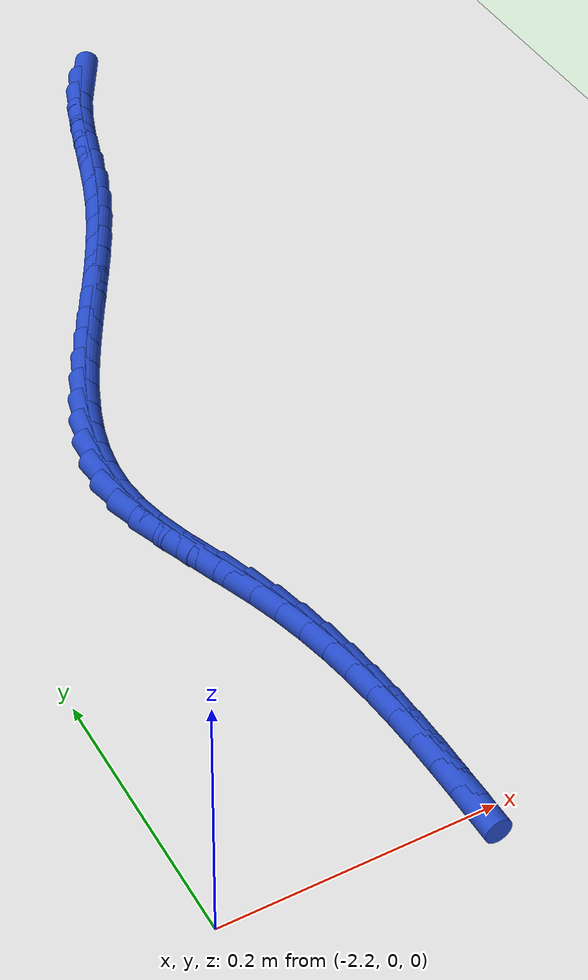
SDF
<sdf version="1.6">
 <world name="default">
  <model name="ground_plane">
   <static>1</static>
   <link name="link">
    <collision name="collision">
     <geometry><plane><normal>0 0 1</normal><size>100 100</size></plane></geometry>
     <surface><friction><ode><mu>100</mu><mu2>50</mu2></ode></friction></surface>
    </collision>
    <visual name="visual">
     <cast_shadows>0</cast_shadows>
     <geometry><plane><normal>0 0 1</normal><size>100 100</size></plane></geometry>
     <material>
      <script><uri>file://media/materials/scripts/gazebo.material</uri><name>Gazebo/WhiteGlow</name></script>
     </material>
    </visual>
   </link>
  </model>
  <model name="line">
   <link name="link_109">
    <pose>-1.890173382354377 0.8306256627773887 0.01 0 1.57 1.0460444347230606</pose>
    <collision name="collision">
     <geometry><cylinder><radius>0.01</radius><length>0.08</length></cylinder></geometry>
    </collision>
    <visual name="visual">
     <material>
      <script><name>Gazebo/Blue</name><uri>file://media/materials/scripts/gazebo.material</uri></script>
     </material>
     <geometry><cylinder><radius>0.01</radius><length>0.08</length></cylinder></geometry>
    </visual>
   </link>
   <link name="link_110">
    <pose>-1.901343467620338 0.8113299265351325 0.01 0 1.57 1.144907023624097</pose>
    <collision name="collision">
     <geometry><cylinder><radius>0.01</radius><length>0.08</length></cylinder></geometry>
    </collision>
    <visual name="visual">
     <material>
      <script><name>Gazebo/Blue</name><uri>file://media/materials/scripts/gazebo.material</uri></script>
     </material>
     <geometry><cylinder><radius>0.01</radius><length>0.08</length></cylinder></geometry>
    </visual>
   </link>
   <link name="link_111">
    <pose>-1.9109374610502545 0.79018171371596 0.01 0 1.57 1.2094872235053047</pose>
    <collision name="collision">
     <geometry><cylinder><radius>0.01</radius><length>0.08</length></cylinder></geometry>
    </collision>
    <visual name="visual">
     <material>
      <script><name>Gazebo/Blue</name><uri>file://media/materials/scripts/gazebo.material</uri></script>
     </material>
     <geometry><cylinder><radius>0.01</radius><length>0.08</length></cylinder></geometry>
    </visual>
   </link>
   <link name="link_112">
    <pose>-1.9194723402866363 0.7675965835866083 0.01 0 1.57 1.2443290268625944</pose>
    <collision name="collision">
     <geometry><cylinder><radius>0.01</radius><length>0.08</length></cylinder></geometry>
    </collision>
    <visual name="visual">
     <material>
      <script><name>Gazebo/Blue</name><uri>file://media/materials/scripts/gazebo.material</uri></script>
     </material>
     <geometry><cylinder><radius>0.01</radius><length>0.08</length></cylinder></geometry>
    </visual>
   </link>
   <link name="link_113">
    <pose>-1.927465082971992 0.7439900954138136 0.01 0 1.57 1.2528859340526544</pose>
    <collision name="collision">
     <geometry><cylinder><radius>0.01</radius><length>0.08</length></cylinder></geometry>
    </collision>
    <visual name="visual">
     <material>
      <script><name>Gazebo/Blue</name><uri>file://media/materials/scripts/gazebo.material</uri></script>
     </material>
     <geometry><cylinder><radius>0.01</radius><length>0.08</length></cylinder></geometry>
    </visual>
   </link>
   <link name="link_114">
    <pose>-1.935432666748831 0.7197778084643126 0.01 0 1.57 1.2370992716952982</pose>
    <collision name="collision">
     <geometry><cylinder><radius>0.01</radius><length>0.08</length></cylinder></geometry>
    </collision>
    <visual name="visual">
     <material>
      <script><name>Gazebo/Blue</name><uri>file://media/materials/scripts/gazebo.material</uri></script>
     </material>
     <geometry><cylinder><radius>0.01</radius><length>0.08</length></cylinder></geometry>
    </visual>
   </link>
   <link name="link_115">
    <pose>-1.9438920692596633 0.6953752820048421 0.01 0 1.57 1.1977263452398683</pose>
    <collision name="collision">
     <geometry><cylinder><radius>0.01</radius><length>0.08</length></cylinder></geometry>
    </collision>
    <visual name="visual">
     <material>
      <script><name>Gazebo/Blue</name><uri>file://media/materials/scripts/gazebo.material</uri></script>
     </material>
     <geometry><cylinder><radius>0.01</radius><length>0.08</length></cylinder></geometry>
    </visual>
   </link>
   <link name="link_116">
    <pose>-1.9533559763289021 0.6711956032524032 0.01 0 1.57 1.1472152273104441</pose>
    <collision name="collision">
     <geometry><cylinder><radius>0.01</radius><length>0.08</length></cylinder></geometry>
    </collision>
    <visual name="visual">
     <material>
      <script><name>Gazebo/Blue</name><uri>file://media/materials/scripts/gazebo.material</uri></script>
     </material>
     <geometry><cylinder><radius>0.01</radius><length>0.08</length></cylinder></geometry>
    </visual>
   </link>
   <link name="link_117">
    <pose>-1.9640466722915622 0.6474845907026369 0.01 0 1.57 1.1059123445928145</pose>
    <collision name="collision">
     <geometry><cylinder><radius>0.01</radius><length>0.08</length></cylinder></geometry>
    </collision>
    <visual name="visual">
     <material>
      <script><name>Gazebo/Blue</name><uri>file://media/materials/scripts/gazebo.material</uri></script>
     </material>
     <geometry><cylinder><radius>0.01</radius><length>0.08</length></cylinder></geometry>
    </visual>
   </link>
   <link name="link_118">
    <pose>-1.9757163124480934 0.6242172726336521 0.01 0 1.57 1.0754501926508044</pose>
    <collision name="collision">
     <geometry><cylinder><radius>0.01</radius><length>0.08</length></cylinder></geometry>
    </collision>
    <visual name="visual">
     <material>
      <script><name>Gazebo/Blue</name><uri>file://media/materials/scripts/gazebo.material</uri></script>
     </material>
     <geometry><cylinder><radius>0.01</radius><length>0.08</length></cylinder></geometry>
    </visual>
   </link>
   <link name="link_119">
    <pose>-1.9880741786594904 0.6013439825969147 0.01 0 1.57 1.0556176077382937</pose>
    <collision name="collision">
     <geometry><cylinder><radius>0.01</radius><length>0.08</length></cylinder></geometry>
    </collision>
    <visual name="visual">
     <material>
      <script><name>Gazebo/Blue</name><uri>file://media/materials/scripts/gazebo.material</uri></script>
     </material>
     <geometry><cylinder><radius>0.01</radius><length>0.08</length></cylinder></geometry>
    </visual>
   </link>
   <link name="link_120">
    <pose>-2.0008295527867492 0.57881505414389 0.01 0 1.57 1.0463471422072523</pose>
    <collision name="collision">
     <geometry><cylinder><radius>0.01</radius><length>0.08</length></cylinder></geometry>
    </collision>
    <visual name="visual">
     <material>
      <script><name>Gazebo/Blue</name><uri>file://media/materials/scripts/gazebo.material</uri></script>
     </material>
     <geometry><cylinder><radius>0.01</radius><length>0.08</length></cylinder></geometry>
    </visual>
   </link>
   <link name="link_121">
    <pose>-2.0136917166908654 0.556580820826044 0.01 0 1.57 1.0477856871473894</pose>
    <collision name="collision">
     <geometry><cylinder><radius>0.01</radius><length>0.08</length></cylinder></geometry>
    </collision>
    <visual name="visual">
     <material>
      <script><name>Gazebo/Blue</name><uri>file://media/materials/scripts/gazebo.material</uri></script>
     </material>
     <geometry><cylinder><radius>0.01</radius><length>0.08</length></cylinder></geometry>
    </visual>
   </link>
   <link name="link_122">
    <pose>-2.0263699522328356 0.5345916161948421 0.01 0 1.57 1.060341632944363</pose>
    <collision name="collision">
     <geometry><cylinder><radius>0.01</radius><length>0.08</length></cylinder></geometry>
    </collision>
    <visual name="visual">
     <material>
      <script><name>Gazebo/Blue</name><uri>file://media/materials/scripts/gazebo.material</uri></script>
     </material>
     <geometry><cylinder><radius>0.01</radius><length>0.08</length></cylinder></geometry>
    </visual>
   </link>
   <link name="link_123">
    <pose>-2.0385735412736548 0.51279777380175 0.01 0 1.57 1.0847113944787083</pose>
    <collision name="collision">
     <geometry><cylinder><radius>0.01</radius><length>0.08</length></cylinder></geometry>
    </collision>
    <visual name="visual">
     <material>
      <script><name>Gazebo/Blue</name><uri>file://media/materials/scripts/gazebo.material</uri></script>
     </material>
     <geometry><cylinder><radius>0.01</radius><length>0.08</length></cylinder></geometry>
    </visual>
   </link>
   <link name="link_124">
    <pose>-2.0500117656743178 0.49114962719823324 0.01 0 1.57 1.1218772731203674</pose>
    <collision name="collision">
     <geometry><cylinder><radius>0.01</radius><length>0.08</length></cylinder></geometry>
    </collision>
    <visual name="visual">
     <material>
      <script><name>Gazebo/Blue</name><uri>file://media/materials/scripts/gazebo.material</uri></script>
     </material>
     <geometry><cylinder><radius>0.01</radius><length>0.08</length></cylinder></geometry>
    </visual>
   </link>
   <link name="link_125">
    <pose>-2.0603939072958224 0.46959750993575716 0.01 0 1.57 1.1730527700990665</pose>
    <collision name="collision">
     <geometry><cylinder><radius>0.01</radius><length>0.08</length></cylinder></geometry>
    </collision>
    <visual name="visual">
     <material>
      <script><name>Gazebo/Blue</name><uri>file://media/materials/scripts/gazebo.material</uri></script>
     </material>
     <geometry><cylinder><radius>0.01</radius><length>0.08</length></cylinder></geometry>
    </visual>
   </link>
   <link name="link_126">
    <pose>-2.0694292479991634 0.44809175556578773 0.01 0 1.57 1.23953049397752</pose>
    <collision name="collision">
     <geometry><cylinder><radius>0.01</radius><length>0.08</length></cylinder></geometry>
    </collision>
    <visual name="visual">
     <material>
      <script><name>Gazebo/Blue</name><uri>file://media/materials/scripts/gazebo.material</uri></script>
     </material>
     <geometry><cylinder><radius>0.01</radius><length>0.08</length></cylinder></geometry>
    </visual>
   </link>
   <link name="link_127">
    <pose>-2.0768270696453355 0.4265826976397902 0.01 0 1.57 1.3223689440794009</pose>
    <collision name="collision">
     <geometry><cylinder><radius>0.01</radius><length>0.08</length></cylinder></geometry>
    </collision>
    <visual name="visual">
     <material>
      <script><name>Gazebo/Blue</name><uri>file://media/materials/scripts/gazebo.material</uri></script>
     </material>
     <geometry><cylinder><radius>0.01</radius><length>0.08</length></cylinder></geometry>
    </visual>
   </link>
   <link name="link_128">
    <pose>-2.082296654095336 0.40502066970923034 0.01 0 1.57 1.4218644215103293</pose>
    <collision name="collision">
     <geometry><cylinder><radius>0.01</radius><length>0.08</length></cylinder></geometry>
    </collision>
    <visual name="visual">
     <material>
      <script><name>Gazebo/Blue</name><uri>file://media/materials/scripts/gazebo.material</uri></script>
     </material>
     <geometry><cylinder><radius>0.01</radius><length>0.08</length></cylinder></geometry>
    </visual>
   </link>
   <link name="link_129">
    <pose>-2.08554728321016 0.3833560053255738 0.01 0 1.57 1.5368470182176228</pose>
    <collision name="collision">
     <geometry><cylinder><radius>0.01</radius><length>0.08</length></cylinder></geometry>
    </collision>
    <visual name="visual">
     <material>
      <script><name>Gazebo/Blue</name><uri>file://media/materials/scripts/gazebo.material</uri></script>
     </material>
     <geometry><cylinder><radius>0.01</radius><length>0.08</length></cylinder></geometry>
    </visual>
   </link>
   <link name="link_130">
    <pose>-2.086288238850803 0.3615390380402861 0.01 0 1.57 -1.477563913934521</pose>
    <collision name="collision">
     <geometry><cylinder><radius>0.01</radius><length>0.08</length></cylinder></geometry>
    </collision>
    <visual name="visual">
     <material>
      <script><name>Gazebo/Blue</name><uri>file://media/materials/scripts/gazebo.material</uri></script>
     </material>
     <geometry><cylinder><radius>0.01</radius><length>0.08</length></cylinder></geometry>
    </visual>
   </link>
   <link name="link_131">
    <pose>-2.0842293950761372 0.3395201403071636 0.01 0 1.57 -1.355084771426268</pose>
    <collision name="collision">
     <geometry><cylinder><radius>0.01</radius><length>0.08</length></cylinder></geometry>
    </collision>
    <visual name="visual">
     <material>
      <script><name>Gazebo/Blue</name><uri>file://media/materials/scripts/gazebo.material</uri></script>
     </material>
     <geometry><cylinder><radius>0.01</radius><length>0.08</length></cylinder></geometry>
    </visual>
   </link>
   <link name="link_132">
    <pose>-2.079353401047162 0.3172676035690075 0.01 0 1.57 -1.2685861178584672</pose>
    <collision name="collision">
     <geometry><cylinder><radius>0.01</radius><length>0.08</length></cylinder></geometry>
    </collision>
    <visual name="visual">
     <material>
      <script><name>Gazebo/Blue</name><uri>file://media/materials/scripts/gazebo.material</uri></script>
     </material>
     <geometry><cylinder><radius>0.01</radius><length>0.08</length></cylinder></geometry>
    </visual>
   </link>
   <link name="link_133">
    <pose>-2.072347667654535 0.2947960160808528 0.01 0 1.57 -1.2184218512035216</pose>
    <collision name="collision">
     <geometry><cylinder><radius>0.01</radius><length>0.08</length></cylinder></geometry>
    </collision>
    <visual name="visual">
     <material>
      <script><name>Gazebo/Blue</name><uri>file://media/materials/scripts/gazebo.material</uri></script>
     </material>
     <geometry><cylinder><radius>0.01</radius><length>0.08</length></cylinder></geometry>
    </visual>
   </link>
   <link name="link_134">
    <pose>-2.064011904746796 0.27212734317788395 0.01 0 1.57 -1.200575009292439</pose>
    <collision name="collision">
     <geometry><cylinder><radius>0.01</radius><length>0.08</length></cylinder></geometry>
    </collision>
    <visual name="visual">
     <material>
      <script><name>Gazebo/Blue</name><uri>file://media/materials/scripts/gazebo.material</uri></script>
     </material>
     <geometry><cylinder><radius>0.01</radius><length>0.08</length></cylinder></geometry>
    </visual>
   </link>
   <link name="link_135">
    <pose>-2.0551458221724865 0.24928355019528642 0.01 0 1.57 -1.2130615933202187</pose>
    <collision name="collision">
     <geometry><cylinder><radius>0.01</radius><length>0.08</length></cylinder></geometry>
    </collision>
    <visual name="visual">
     <material>
      <script><name>Gazebo/Blue</name><uri>file://media/materials/scripts/gazebo.material</uri></script>
     </material>
     <geometry><cylinder><radius>0.01</radius><length>0.08</length></cylinder></geometry>
    </visual>
   </link>
   <link name="link_136">
    <pose>-2.0465491297801464 0.22628660246824575 0.01 0 1.57 -1.2549384913884487</pose>
    <collision name="collision">
     <geometry><cylinder><radius>0.01</radius><length>0.08</length></cylinder></geometry>
    </collision>
    <visual name="visual">
     <material>
      <script><name>Gazebo/Blue</name><uri>file://media/materials/scripts/gazebo.material</uri></script>
     </material>
     <geometry><cylinder><radius>0.01</radius><length>0.08</length></cylinder></geometry>
    </visual>
   </link>
   <link name="link_137">
    <pose>-2.03899074133949 0.2031580217587222 0.01 0 1.57 -1.3083483973395047</pose>
    <collision name="collision">
     <geometry><cylinder><radius>0.01</radius><length>0.08</length></cylinder></geometry>
    </collision>
    <visual name="visual">
     <material>
      <script><name>Gazebo/Blue</name><uri>file://media/materials/scripts/gazebo.material</uri></script>
     </material>
     <geometry><cylinder><radius>0.01</radius><length>0.08</length></cylinder></geometry>
    </visual>
   </link>
   <link name="link_138">
    <pose>-2.0327458861857797 0.17991221901440765 0.01 0 1.57 -1.3576903473757294</pose>
    <collision name="collision">
     <geometry><cylinder><radius>0.01</radius><length>0.08</length></cylinder></geometry>
    </collision>
    <visual name="visual">
     <material>
      <script><name>Gazebo/Blue</name><uri>file://media/materials/scripts/gazebo.material</uri></script>
     </material>
     <geometry><cylinder><radius>0.01</radius><length>0.08</length></cylinder></geometry>
    </visual>
   </link>
   <link name="link_139">
    <pose>-2.027692200981264 0.15655787843235175 0.01 0 1.57 -1.4020360274577137</pose>
    <collision name="collision">
     <geometry><cylinder><radius>0.01</radius><length>0.08</length></cylinder></geometry>
    </collision>
    <visual name="visual">
     <material>
      <script><name>Gazebo/Blue</name><uri>file://media/materials/scripts/gazebo.material</uri></script>
     </material>
     <geometry><cylinder><radius>0.01</radius><length>0.08</length></cylinder></geometry>
    </visual>
   </link>
   <link name="link_140">
    <pose>-2.023696027403088 0.13310352152158808 0.01 0 1.57 -1.4410469260590248</pose>
    <collision name="collision">
     <geometry><cylinder><radius>0.01</radius><length>0.08</length></cylinder></geometry>
    </collision>
    <visual name="visual">
     <material>
      <script><name>Gazebo/Blue</name><uri>file://media/materials/scripts/gazebo.material</uri></script>
     </material>
     <geometry><cylinder><radius>0.01</radius><length>0.08</length></cylinder></geometry>
    </visual>
   </link>
   <link name="link_141">
    <pose>-2.020623707128395 0.10955766979114916 0.01 0 1.57 -1.474512709069848</pose>
    <collision name="collision">
     <geometry><cylinder><radius>0.01</radius><length>0.08</length></cylinder></geometry>
    </collision>
    <visual name="visual">
     <material>
      <script><name>Gazebo/Blue</name><uri>file://media/materials/scripts/gazebo.material</uri></script>
     </material>
     <geometry><cylinder><radius>0.01</radius><length>0.08</length></cylinder></geometry>
    </visual>
   </link>
   <link name="link_142">
    <pose>-2.018341581834331 0.0859288447500688 0.01 0 1.57 -1.5023227878637853</pose>
    <collision name="collision">
     <geometry><cylinder><radius>0.01</radius><length>0.08</length></cylinder></geometry>
    </collision>
    <visual name="visual">
     <material>
      <script><name>Gazebo/Blue</name><uri>file://media/materials/scripts/gazebo.material</uri></script>
     </material>
     <geometry><cylinder><radius>0.01</radius><length>0.08</length></cylinder></geometry>
    </visual>
   </link>
   <link name="link_143">
    <pose>-2.0167159931980385 0.062225567907380194 0.01 0 1.57 -1.5244371777074233</pose>
    <collision name="collision">
     <geometry><cylinder><radius>0.01</radius><length>0.08</length></cylinder></geometry>
    </collision>
    <visual name="visual">
     <material>
      <script><name>Gazebo/Blue</name><uri>file://media/materials/scripts/gazebo.material</uri></script>
     </material>
     <geometry><cylinder><radius>0.01</radius><length>0.08</length></cylinder></geometry>
    </visual>
   </link>
   <link name="link_144">
    <pose>-2.0156132828966635 0.03845636077211676 0.01 0 1.57 -1.5408601771509498</pose>
    <collision name="collision">
     <geometry><cylinder><radius>0.01</radius><length>0.08</length></cylinder></geometry>
    </collision>
    <visual name="visual">
     <material>
      <script><name>Gazebo/Blue</name><uri>file://media/materials/scripts/gazebo.material</uri></script>
     </material>
     <geometry><cylinder><radius>0.01</radius><length>0.08</length></cylinder></geometry>
    </visual>
   </link>
   <link name="link_145">
    <pose>-2.01489979260735 0.014629744853311755 0.01 0 1.57 -1.5516188268877795</pose>
    <collision name="collision">
     <geometry><cylinder><radius>0.01</radius><length>0.08</length></cylinder></geometry>
    </collision>
    <visual name="visual">
     <material>
      <script><name>Gazebo/Blue</name><uri>file://media/materials/scripts/gazebo.material</uri></script>
     </material>
     <geometry><cylinder><radius>0.01</radius><length>0.08</length></cylinder></geometry>
    </visual>
   </link>
  </model>
 </world>
</sdf>
